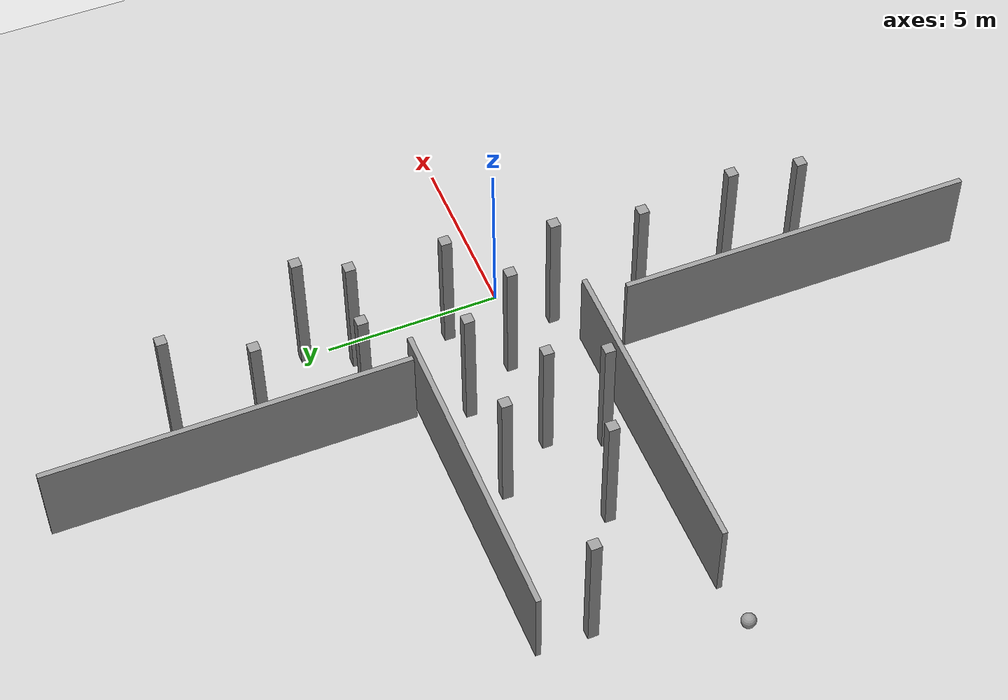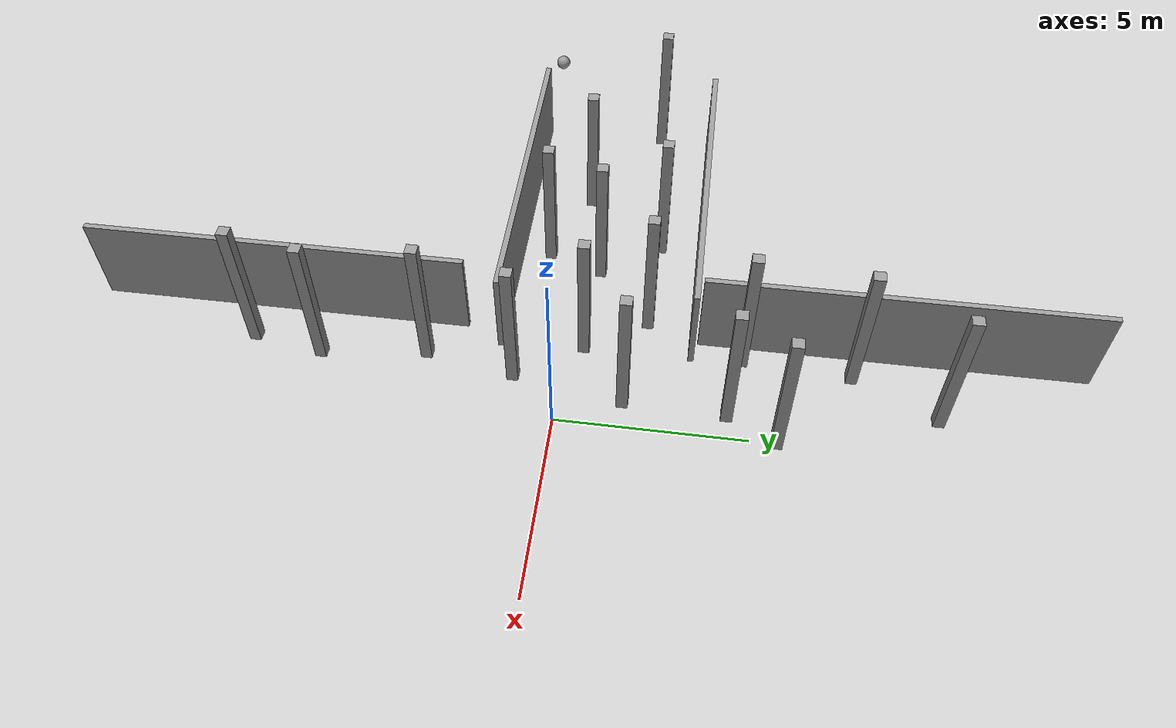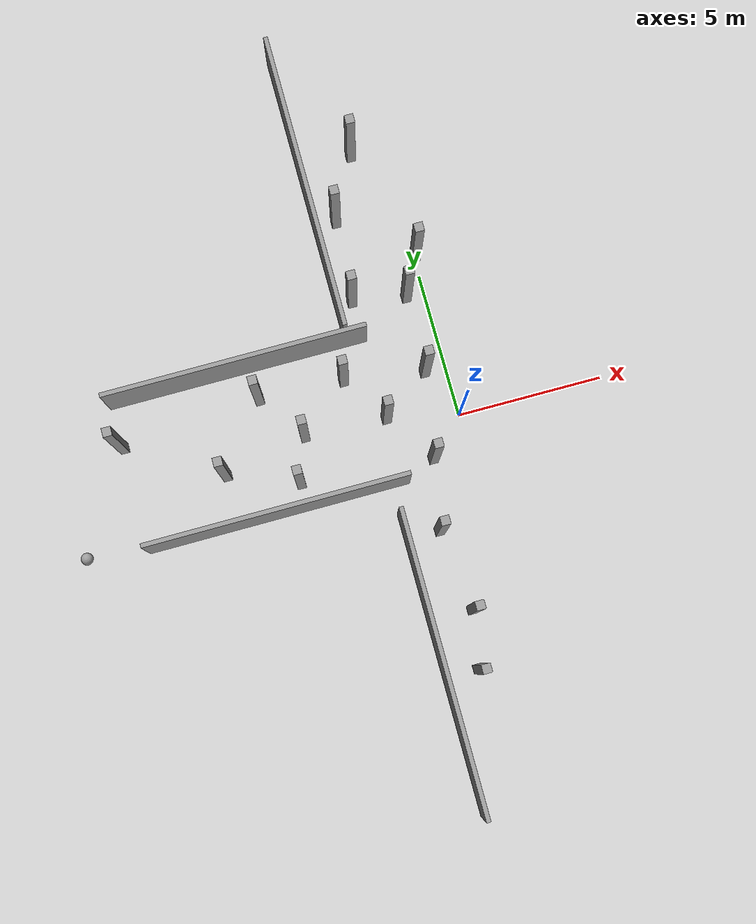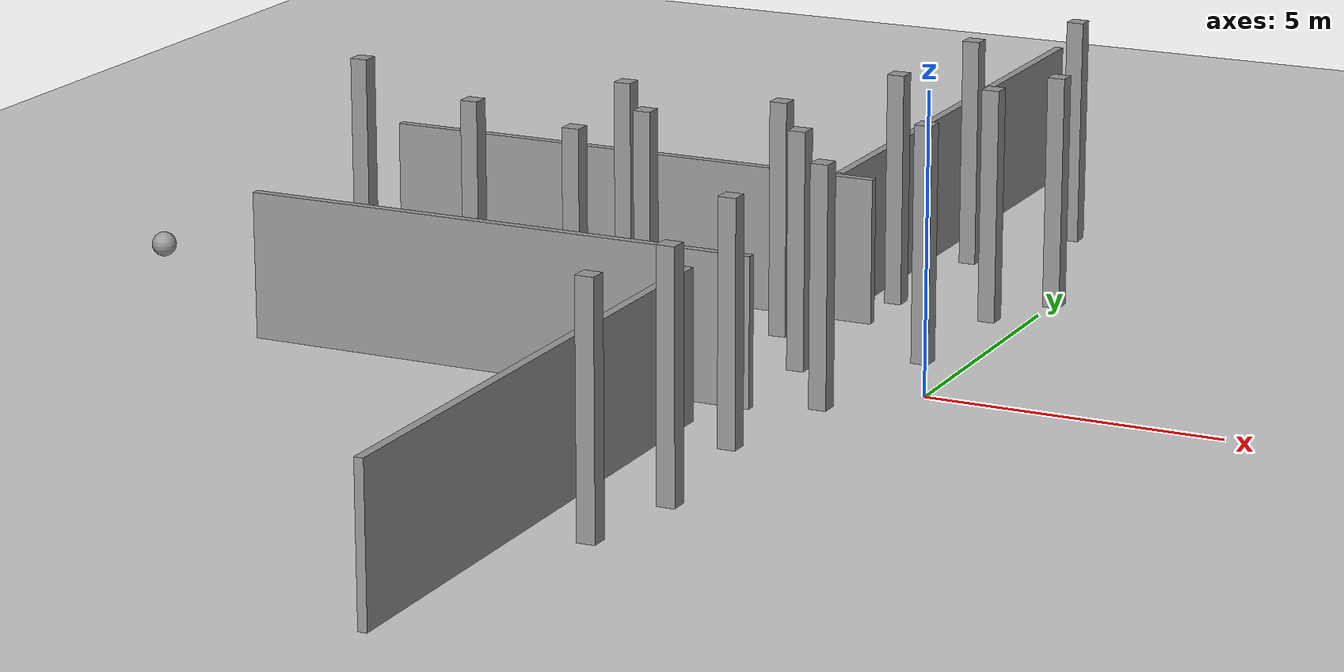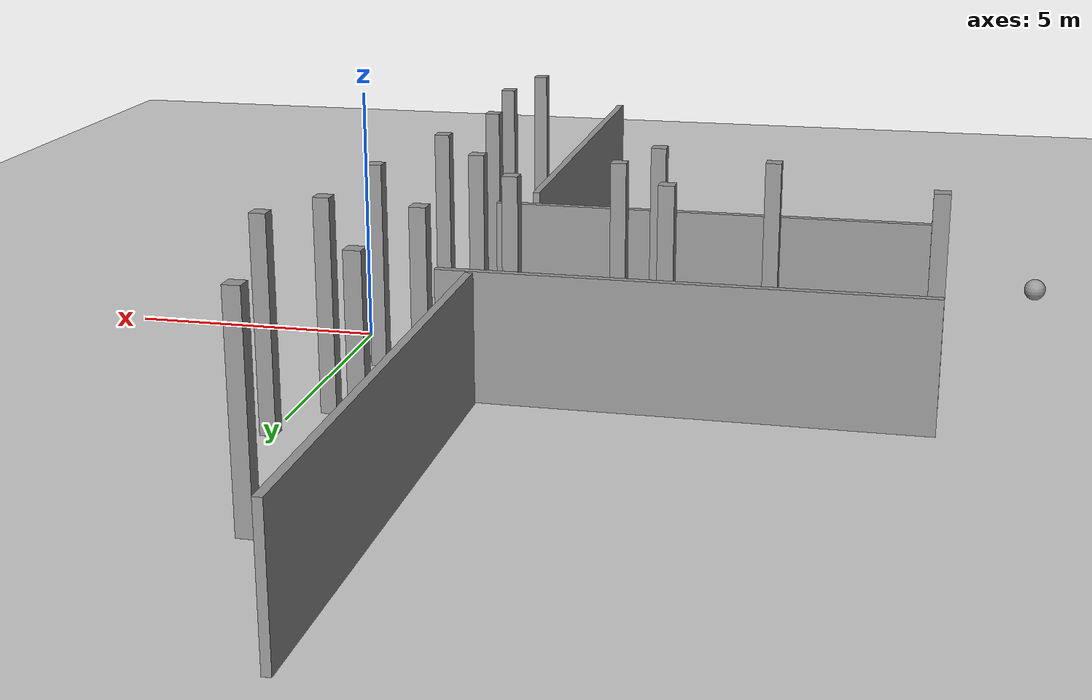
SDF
<sdf version="1.6">
 <world name="default">
  <model name="ground_plane">
   <static>1</static>
   <link name="link">
    <collision name="collision">
     <geometry><plane><normal>0 0 1</normal><size>100 100</size></plane></geometry>
     <surface><friction><ode><mu>100</mu><mu2>50</mu2></ode></friction></surface>
    </collision>
    <visual name="visual">
     <cast_shadows>0</cast_shadows>
     <geometry><plane><normal>0 0 1</normal><size>100 100</size></plane></geometry>
     <material>
      <script><uri>file://media/materials/scripts/gazebo.material</uri><name>Gazebo/Grey</name></script>
     </material>
    </visual>
   </link>
  </model>
  <model name="Untitled">
   <pose>-6.85388 3.37469 0 0 -0 0</pose>
   <link name="Wall_1">
    <collision name="Wall_1_Collision">
     <geometry><box><size>9 0.15 2.5</size></box></geometry>
     <pose>0 0 1.25 0 -0 0</pose>
    </collision>
    <visual name="Wall_1_Visual">
     <pose>0 0 1.25 0 -0 0</pose>
     <geometry><box><size>9 0.15 2.5</size></box></geometry>
     <material>
      <script><uri>file://media/materials/scripts/gazebo.material</uri><name>Gazebo/Grey</name></script>
      <ambient>1 1 1 1</ambient>
     </material>
     <meta><layer>0</layer></meta>
    </visual>
   </link>
   <static>1</static>
  </model>
  <model name="Untitled_clone">
   <pose>-6.74636 -1.72511 0 0 -0 0</pose>
   <link name="Wall_1">
    <collision name="Wall_1_Collision">
     <geometry><box><size>9 0.15 2.5</size></box></geometry>
     <pose>0 0 1.25 0 -0 0</pose>
    </collision>
    <visual name="Wall_1_Visual">
     <pose>0 0 1.25 0 -0 0</pose>
     <geometry><box><size>9 0.15 2.5</size></box></geometry>
     <material>
      <script><uri>file://media/materials/scripts/gazebo.material</uri><name>Gazebo/Grey</name></script>
      <ambient>1 1 1 1</ambient>
     </material>
     <meta><layer>0</layer></meta>
    </visual>
   </link>
   <static>1</static>
  </model>
  <model name="Untitled_0">
   <pose>-2.85637 -7.82972 0 0 -0 0</pose>
   <link name="Wall_3">
    <collision name="Wall_3_Collision">
     <geometry><box><size>10.25 0.15 2.5</size></box></geometry>
     <pose>0 0 1.25 0 -0 0</pose>
    </collision>
    <visual name="Wall_3_Visual">
     <pose>0 0 1.25 0 -0 0</pose>
     <geometry><box><size>10.25 0.15 2.5</size></box></geometry>
     <material>
      <script><uri>file://media/materials/scripts/gazebo.material</uri><name>Gazebo/Grey</name></script>
      <ambient>1 1 1 1</ambient>
     </material>
     <meta><layer>0</layer></meta>
    </visual>
    <pose>0 0 0 0 -0 -1.5708</pose>
   </link>
   <static>1</static>
  </model>
  <model name="Untitled_0_clone_0">
   <pose>-3.02847 8.65549 0 0 -0 0</pose>
   <link name="Wall_3">
    <collision name="Wall_3_Collision">
     <geometry><box><size>10.25 0.15 2.5</size></box></geometry>
     <pose>0 0 1.25 0 -0 0</pose>
    </collision>
    <visual name="Wall_3_Visual">
     <pose>0 0 1.25 0 -0 0</pose>
     <geometry><box><size>10.25 0.15 2.5</size></box></geometry>
     <material>
      <script><uri>file://media/materials/scripts/gazebo.material</uri><name>Gazebo/Grey</name></script>
      <ambient>1 1 1 1</ambient>
     </material>
     <meta><layer>0</layer></meta>
    </visual>
    <pose>0 0 0 0 -0 -1.5708</pose>
   </link>
   <static>1</static>
  </model>
  <model name="unit_box_clone_clone_24">
   <link name="link">
    <inertial>
     <mass>1000</mass>
     <inertia><ixx>1340.83</ixx><ixy>0</ixy><ixz>0</ixz><iyy>1340.83</iyy><iyz>0</iyz><izz>15</izz></inertia>
    </inertial>
    <visual name="visual">
     <geometry><box><size>0.3 0.3 4</size></box></geometry>
     <material>
      <script><name>Gazebo/Grey</name><uri>file://media/materials/scripts/gazebo.material</uri></script>
      <shader type="pixel"><normal_map>__default__</normal_map></shader>
      <ambient>0.3 0.3 0.3 1</ambient>
      <diffuse>0.7 0.7 0.7 1</diffuse>
      <specular>0.01 0.01 0.01 1</specular>
      <emissive>0 0 0 1</emissive>
     </material>
    </visual>
    <collision name="collision">
     <geometry><box><size>0.3 0.3 4</size></box></geometry>
     <surface>
      <friction>
       <ode><mu>1</mu><mu2>1</mu2><fdir1>0 0 0</fdir1><slip1>0</slip1><slip2>0</slip2></ode>
       <torsional>
        <coefficient>1</coefficient>
        <patch_radius>0</patch_radius>
        <surface_radius>0</surface_radius>
        <use_patch_radius>1</use_patch_radius>
        <ode><slip>0</slip></ode>
       </torsional>
      </friction>
      <bounce><restitution_coefficient>0</restitution_coefficient><threshold>1e+06</threshold></bounce>
      <contact>
       <collide_without_contact>0</collide_without_contact>
       <collide_without_contact_bitmask>1</collide_without_contact_bitmask>
       <collide_bitmask>1</collide_bitmask>
       <ode>
        <soft_cfm>0</soft_cfm>
        <soft_erp>0.2</soft_erp>
        <kp>1e+13</kp>
        <kd>1</kd>
        <max_vel>0.01</max_vel>
        <min_depth>0</min_depth>
       </ode>
       <bullet>
        <split_impulse>1</split_impulse>
        <split_impulse_penetration_threshold>-0.01</split_impulse_penetration_threshold>
        <soft_cfm>0</soft_cfm>
        <soft_erp>0.2</soft_erp>
        <kp>1e+13</kp>
        <kd>1</kd>
       </bullet>
      </contact>
     </surface>
    </collision>
   </link>
   <static>0</static>
   <pose>-11.2321 1.86882 2 7e-06 -1e-06 -0.002931</pose>
  </model>
  <model name="unit_box_clone_clone_24_clone">
   <link name="link">
    <inertial>
     <mass>1000</mass>
     <inertia><ixx>1340.83</ixx><ixy>0</ixy><ixz>0</ixz><iyy>1340.83</iyy><iyz>0</iyz><izz>15</izz></inertia>
    </inertial>
    <visual name="visual">
     <geometry><box><size>0.3 0.3 4</size></box></geometry>
     <material>
      <script><name>Gazebo/Grey</name><uri>file://media/materials/scripts/gazebo.material</uri></script>
      <shader type="pixel"><normal_map>__default__</normal_map></shader>
      <ambient>0.3 0.3 0.3 1</ambient>
      <diffuse>0.7 0.7 0.7 1</diffuse>
      <specular>0.01 0.01 0.01 1</specular>
      <emissive>0 0 0 1</emissive>
     </material>
    </visual>
    <collision name="collision">
     <geometry><box><size>0.3 0.3 4</size></box></geometry>
     <surface>
      <friction>
       <ode><mu>1</mu><mu2>1</mu2><fdir1>0 0 0</fdir1><slip1>0</slip1><slip2>0</slip2></ode>
       <torsional>
        <coefficient>1</coefficient>
        <patch_radius>0</patch_radius>
        <surface_radius>0</surface_radius>
        <use_patch_radius>1</use_patch_radius>
        <ode><slip>0</slip></ode>
       </torsional>
      </friction>
      <bounce><restitution_coefficient>0</restitution_coefficient><threshold>1e+06</threshold></bounce>
      <contact>
       <collide_without_contact>0</collide_without_contact>
       <collide_without_contact_bitmask>1</collide_without_contact_bitmask>
       <collide_bitmask>1</collide_bitmask>
       <ode>
        <soft_cfm>0</soft_cfm>
        <soft_erp>0.2</soft_erp>
        <kp>1e+13</kp>
        <kd>1</kd>
        <max_vel>0.01</max_vel>
        <min_depth>0</min_depth>
       </ode>
       <bullet>
        <split_impulse>1</split_impulse>
        <split_impulse_penetration_threshold>-0.01</split_impulse_penetration_threshold>
        <soft_cfm>0</soft_cfm>
        <soft_erp>0.2</soft_erp>
        <kp>1e+13</kp>
        <kd>1</kd>
       </bullet>
      </contact>
     </surface>
    </collision>
   </link>
   <static>0</static>
   <pose>-2.42599 0.511197 2 1.4e-05 -0 -0.002924</pose>
  </model>
  <model name="unit_box_clone_clone_24_clone_0">
   <link name="link">
    <inertial>
     <mass>1000</mass>
     <inertia><ixx>1340.83</ixx><ixy>0</ixy><ixz>0</ixz><iyy>1340.83</iyy><iyz>0</iyz><izz>15</izz></inertia>
    </inertial>
    <visual name="visual">
     <geometry><box><size>0.3 0.3 4</size></box></geometry>
     <material>
      <script><name>Gazebo/Grey</name><uri>file://media/materials/scripts/gazebo.material</uri></script>
      <shader type="pixel"><normal_map>__default__</normal_map></shader>
      <ambient>0.3 0.3 0.3 1</ambient>
      <diffuse>0.7 0.7 0.7 1</diffuse>
      <specular>0.01 0.01 0.01 1</specular>
      <emissive>0 0 0 1</emissive>
     </material>
    </visual>
    <collision name="collision">
     <geometry><box><size>0.3 0.3 4</size></box></geometry>
     <surface>
      <friction>
       <ode><mu>1</mu><mu2>1</mu2><fdir1>0 0 0</fdir1><slip1>0</slip1><slip2>0</slip2></ode>
       <torsional>
        <coefficient>1</coefficient>
        <patch_radius>0</patch_radius>
        <surface_radius>0</surface_radius>
        <use_patch_radius>1</use_patch_radius>
        <ode><slip>0</slip></ode>
       </torsional>
      </friction>
      <bounce><restitution_coefficient>0</restitution_coefficient><threshold>1e+06</threshold></bounce>
      <contact>
       <collide_without_contact>0</collide_without_contact>
       <collide_without_contact_bitmask>1</collide_without_contact_bitmask>
       <collide_bitmask>1</collide_bitmask>
       <ode>
        <soft_cfm>0</soft_cfm>
        <soft_erp>0.2</soft_erp>
        <kp>1e+13</kp>
        <kd>1</kd>
        <max_vel>0.01</max_vel>
        <min_depth>0</min_depth>
       </ode>
       <bullet>
        <split_impulse>1</split_impulse>
        <split_impulse_penetration_threshold>-0.01</split_impulse_penetration_threshold>
        <soft_cfm>0</soft_cfm>
        <soft_erp>0.2</soft_erp>
        <kp>1e+13</kp>
        <kd>1</kd>
       </bullet>
      </contact>
     </surface>
    </collision>
   </link>
   <static>0</static>
   <pose>-1.26208 -1.22117 2 6e-06 -0 -0.002932</pose>
  </model>
  <model name="unit_box_clone_clone_24_clone_2">
   <link name="link">
    <inertial>
     <mass>1000</mass>
     <inertia><ixx>1340.83</ixx><ixy>0</ixy><ixz>0</ixz><iyy>1340.83</iyy><iyz>0</iyz><izz>15</izz></inertia>
    </inertial>
    <visual name="visual">
     <geometry><box><size>0.3 0.3 4</size></box></geometry>
     <material>
      <script><name>Gazebo/Grey</name><uri>file://media/materials/scripts/gazebo.material</uri></script>
      <shader type="pixel"><normal_map>__default__</normal_map></shader>
      <ambient>0.3 0.3 0.3 1</ambient>
      <diffuse>0.7 0.7 0.7 1</diffuse>
      <specular>0.01 0.01 0.01 1</specular>
      <emissive>0 0 0 1</emissive>
     </material>
    </visual>
    <collision name="collision">
     <geometry><box><size>0.3 0.3 4</size></box></geometry>
     <surface>
      <friction>
       <ode><mu>1</mu><mu2>1</mu2><fdir1>0 0 0</fdir1><slip1>0</slip1><slip2>0</slip2></ode>
       <torsional>
        <coefficient>1</coefficient>
        <patch_radius>0</patch_radius>
        <surface_radius>0</surface_radius>
        <use_patch_radius>1</use_patch_radius>
        <ode><slip>0</slip></ode>
       </torsional>
      </friction>
      <bounce><restitution_coefficient>0</restitution_coefficient><threshold>1e+06</threshold></bounce>
      <contact>
       <collide_without_contact>0</collide_without_contact>
       <collide_without_contact_bitmask>1</collide_without_contact_bitmask>
       <collide_bitmask>1</collide_bitmask>
       <ode>
        <soft_cfm>0</soft_cfm>
        <soft_erp>0.2</soft_erp>
        <kp>1e+13</kp>
        <kd>1</kd>
        <max_vel>0.01</max_vel>
        <min_depth>0</min_depth>
       </ode>
       <bullet>
        <split_impulse>1</split_impulse>
        <split_impulse_penetration_threshold>-0.01</split_impulse_penetration_threshold>
        <soft_cfm>0</soft_cfm>
        <soft_erp>0.2</soft_erp>
        <kp>1e+13</kp>
        <kd>1</kd>
       </bullet>
      </contact>
     </surface>
    </collision>
   </link>
   <static>0</static>
   <pose>-0.653803 4.40188 2 -0 -0 -0.002928</pose>
  </model>
  <model name="unit_box_clone_clone_24_clone_4">
   <link name="link">
    <inertial>
     <mass>1000</mass>
     <inertia><ixx>1340.83</ixx><ixy>0</ixy><ixz>0</ixz><iyy>1340.83</iyy><iyz>0</iyz><izz>15</izz></inertia>
    </inertial>
    <visual name="visual">
     <geometry><box><size>0.3 0.3 4</size></box></geometry>
     <material>
      <script><name>Gazebo/Grey</name><uri>file://media/materials/scripts/gazebo.material</uri></script>
      <shader type="pixel"><normal_map>__default__</normal_map></shader>
      <ambient>0.3 0.3 0.3 1</ambient>
      <diffuse>0.7 0.7 0.7 1</diffuse>
      <specular>0.01 0.01 0.01 1</specular>
      <emissive>0 0 0 1</emissive>
     </material>
    </visual>
    <collision name="collision">
     <geometry><box><size>0.3 0.3 4</size></box></geometry>
     <surface>
      <friction>
       <ode><mu>1</mu><mu2>1</mu2><fdir1>0 0 0</fdir1><slip1>0</slip1><slip2>0</slip2></ode>
       <torsional>
        <coefficient>1</coefficient>
        <patch_radius>0</patch_radius>
        <surface_radius>0</surface_radius>
        <use_patch_radius>1</use_patch_radius>
        <ode><slip>0</slip></ode>
       </torsional>
      </friction>
      <bounce><restitution_coefficient>0</restitution_coefficient><threshold>1e+06</threshold></bounce>
      <contact>
       <collide_without_contact>0</collide_without_contact>
       <collide_without_contact_bitmask>1</collide_without_contact_bitmask>
       <collide_bitmask>1</collide_bitmask>
       <ode>
        <soft_cfm>0</soft_cfm>
        <soft_erp>0.2</soft_erp>
        <kp>1e+13</kp>
        <kd>1</kd>
        <max_vel>0.01</max_vel>
        <min_depth>0</min_depth>
       </ode>
       <bullet>
        <split_impulse>1</split_impulse>
        <split_impulse_penetration_threshold>-0.01</split_impulse_penetration_threshold>
        <soft_cfm>0</soft_cfm>
        <soft_erp>0.2</soft_erp>
        <kp>1e+13</kp>
        <kd>1</kd>
       </bullet>
      </contact>
     </surface>
    </collision>
   </link>
   <static>0</static>
   <pose>-2.28629 7.58681 2 -1.8e-05 -0 -0.002925</pose>
  </model>
  <model name="unit_box_clone_clone_24_clone_6">
   <link name="link">
    <inertial>
     <mass>1000</mass>
     <inertia><ixx>1340.83</ixx><ixy>0</ixy><ixz>0</ixz><iyy>1340.83</iyy><iyz>0</iyz><izz>15</izz></inertia>
    </inertial>
    <visual name="visual">
     <geometry><box><size>0.3 0.3 4</size></box></geometry>
     <material>
      <script><name>Gazebo/Grey</name><uri>file://media/materials/scripts/gazebo.material</uri></script>
      <shader type="pixel"><normal_map>__default__</normal_map></shader>
      <ambient>0.3 0.3 0.3 1</ambient>
      <diffuse>0.7 0.7 0.7 1</diffuse>
      <specular>0.01 0.01 0.01 1</specular>
      <emissive>0 0 0 1</emissive>
     </material>
    </visual>
    <collision name="collision">
     <geometry><box><size>0.3 0.3 4</size></box></geometry>
     <surface>
      <friction>
       <ode><mu>1</mu><mu2>1</mu2><fdir1>0 0 0</fdir1><slip1>0</slip1><slip2>0</slip2></ode>
       <torsional>
        <coefficient>1</coefficient>
        <patch_radius>0</patch_radius>
        <surface_radius>0</surface_radius>
        <use_patch_radius>1</use_patch_radius>
        <ode><slip>0</slip></ode>
       </torsional>
      </friction>
      <bounce><restitution_coefficient>0</restitution_coefficient><threshold>1e+06</threshold></bounce>
      <contact>
       <collide_without_contact>0</collide_without_contact>
       <collide_without_contact_bitmask>1</collide_without_contact_bitmask>
       <collide_bitmask>1</collide_bitmask>
       <ode>
        <soft_cfm>0</soft_cfm>
        <soft_erp>0.2</soft_erp>
        <kp>1e+13</kp>
        <kd>1</kd>
        <max_vel>0.01</max_vel>
        <min_depth>0</min_depth>
       </ode>
       <bullet>
        <split_impulse>1</split_impulse>
        <split_impulse_penetration_threshold>-0.01</split_impulse_penetration_threshold>
        <soft_cfm>0</soft_cfm>
        <soft_erp>0.2</soft_erp>
        <kp>1e+13</kp>
        <kd>1</kd>
       </bullet>
      </contact>
     </surface>
    </collision>
   </link>
   <static>0</static>
   <pose>-1.17803 9.7513 2 0 0 -0.002937</pose>
  </model>
  <model name="unit_box_clone_clone_24_clone_7">
   <link name="link">
    <inertial>
     <mass>1000</mass>
     <inertia><ixx>1340.83</ixx><ixy>0</ixy><ixz>0</ixz><iyy>1340.83</iyy><iyz>0</iyz><izz>15</izz></inertia>
    </inertial>
    <visual name="visual">
     <geometry><box><size>0.3 0.3 4</size></box></geometry>
     <material>
      <script><name>Gazebo/Grey</name><uri>file://media/materials/scripts/gazebo.material</uri></script>
      <shader type="pixel"><normal_map>__default__</normal_map></shader>
      <ambient>0.3 0.3 0.3 1</ambient>
      <diffuse>0.7 0.7 0.7 1</diffuse>
      <specular>0.01 0.01 0.01 1</specular>
      <emissive>0 0 0 1</emissive>
     </material>
    </visual>
    <collision name="collision">
     <geometry><box><size>0.3 0.3 4</size></box></geometry>
     <surface>
      <friction>
       <ode><mu>1</mu><mu2>1</mu2><fdir1>0 0 0</fdir1><slip1>0</slip1><slip2>0</slip2></ode>
       <torsional>
        <coefficient>1</coefficient>
        <patch_radius>0</patch_radius>
        <surface_radius>0</surface_radius>
        <use_patch_radius>1</use_patch_radius>
        <ode><slip>0</slip></ode>
       </torsional>
      </friction>
      <bounce><restitution_coefficient>0</restitution_coefficient><threshold>1e+06</threshold></bounce>
      <contact>
       <collide_without_contact>0</collide_without_contact>
       <collide_without_contact_bitmask>1</collide_without_contact_bitmask>
       <collide_bitmask>1</collide_bitmask>
       <ode>
        <soft_cfm>0</soft_cfm>
        <soft_erp>0.2</soft_erp>
        <kp>1e+13</kp>
        <kd>1</kd>
        <max_vel>0.01</max_vel>
        <min_depth>0</min_depth>
       </ode>
       <bullet>
        <split_impulse>1</split_impulse>
        <split_impulse_penetration_threshold>-0.01</split_impulse_penetration_threshold>
        <soft_cfm>0</soft_cfm>
        <soft_erp>0.2</soft_erp>
        <kp>1e+13</kp>
        <kd>1</kd>
       </bullet>
      </contact>
     </surface>
    </collision>
   </link>
   <static>0</static>
   <pose>-8.10757 0.03817 2.00001 0 4e-05 -0.002926</pose>
  </model>
  <model name="unit_box_clone_clone_24_clone_8">
   <link name="link">
    <inertial>
     <mass>1000</mass>
     <inertia><ixx>1340.83</ixx><ixy>0</ixy><ixz>0</ixz><iyy>1340.83</iyy><iyz>0</iyz><izz>15</izz></inertia>
    </inertial>
    <visual name="visual">
     <geometry><box><size>0.3 0.3 4</size></box></geometry>
     <material>
      <script><name>Gazebo/Grey</name><uri>file://media/materials/scripts/gazebo.material</uri></script>
      <shader type="pixel"><normal_map>__default__</normal_map></shader>
      <ambient>0.3 0.3 0.3 1</ambient>
      <diffuse>0.7 0.7 0.7 1</diffuse>
      <specular>0.01 0.01 0.01 1</specular>
      <emissive>0 0 0 1</emissive>
     </material>
    </visual>
    <collision name="collision">
     <geometry><box><size>0.3 0.3 4</size></box></geometry>
     <surface>
      <friction>
       <ode><mu>1</mu><mu2>1</mu2><fdir1>0 0 0</fdir1><slip1>0</slip1><slip2>0</slip2></ode>
       <torsional>
        <coefficient>1</coefficient>
        <patch_radius>0</patch_radius>
        <surface_radius>0</surface_radius>
        <use_patch_radius>1</use_patch_radius>
        <ode><slip>0</slip></ode>
       </torsional>
      </friction>
      <bounce><restitution_coefficient>0</restitution_coefficient><threshold>1e+06</threshold></bounce>
      <contact>
       <collide_without_contact>0</collide_without_contact>
       <collide_without_contact_bitmask>1</collide_without_contact_bitmask>
       <collide_bitmask>1</collide_bitmask>
       <ode>
        <soft_cfm>0</soft_cfm>
        <soft_erp>0.2</soft_erp>
        <kp>1e+13</kp>
        <kd>1</kd>
        <max_vel>0.01</max_vel>
        <min_depth>0</min_depth>
       </ode>
       <bullet>
        <split_impulse>1</split_impulse>
        <split_impulse_penetration_threshold>-0.01</split_impulse_penetration_threshold>
        <soft_cfm>0</soft_cfm>
        <soft_erp>0.2</soft_erp>
        <kp>1e+13</kp>
        <kd>1</kd>
       </bullet>
      </contact>
     </surface>
    </collision>
   </link>
   <static>0</static>
   <pose>-6.39947 2.26061 2 0 4e-06 -0.002923</pose>
  </model>
  <model name="unit_box_clone_clone_24_clone_9">
   <link name="link">
    <inertial>
     <mass>1000</mass>
     <inertia><ixx>1340.83</ixx><ixy>0</ixy><ixz>0</ixz><iyy>1340.83</iyy><iyz>0</iyz><izz>15</izz></inertia>
    </inertial>
    <visual name="visual">
     <geometry><box><size>0.3 0.3 4</size></box></geometry>
     <material>
      <script><name>Gazebo/Grey</name><uri>file://media/materials/scripts/gazebo.material</uri></script>
      <shader type="pixel"><normal_map>__default__</normal_map></shader>
      <ambient>0.3 0.3 0.3 1</ambient>
      <diffuse>0.7 0.7 0.7 1</diffuse>
      <specular>0.01 0.01 0.01 1</specular>
      <emissive>0 0 0 1</emissive>
     </material>
    </visual>
    <collision name="collision">
     <geometry><box><size>0.3 0.3 4</size></box></geometry>
     <surface>
      <friction>
       <ode><mu>1</mu><mu2>1</mu2><fdir1>0 0 0</fdir1><slip1>0</slip1><slip2>0</slip2></ode>
       <torsional>
        <coefficient>1</coefficient>
        <patch_radius>0</patch_radius>
        <surface_radius>0</surface_radius>
        <use_patch_radius>1</use_patch_radius>
        <ode><slip>0</slip></ode>
       </torsional>
      </friction>
      <bounce><restitution_coefficient>0</restitution_coefficient><threshold>1e+06</threshold></bounce>
      <contact>
       <collide_without_contact>0</collide_without_contact>
       <collide_without_contact_bitmask>1</collide_without_contact_bitmask>
       <collide_bitmask>1</collide_bitmask>
       <ode>
        <soft_cfm>0</soft_cfm>
        <soft_erp>0.2</soft_erp>
        <kp>1e+13</kp>
        <kd>1</kd>
        <max_vel>0.01</max_vel>
        <min_depth>0</min_depth>
       </ode>
       <bullet>
        <split_impulse>1</split_impulse>
        <split_impulse_penetration_threshold>-0.01</split_impulse_penetration_threshold>
        <soft_cfm>0</soft_cfm>
        <soft_erp>0.2</soft_erp>
        <kp>1e+13</kp>
        <kd>1</kd>
       </bullet>
      </contact>
     </surface>
    </collision>
   </link>
   <static>0</static>
   <pose>-5.77278 -0.868819 2 2e-06 -0 -0.002932</pose>
  </model>
  <model name="unit_box_clone_clone_24_clone_11">
   <link name="link">
    <inertial>
     <mass>1000</mass>
     <inertia><ixx>1340.83</ixx><ixy>0</ixy><ixz>0</ixz><iyy>1340.83</iyy><iyz>0</iyz><izz>15</izz></inertia>
    </inertial>
    <visual name="visual">
     <geometry><box><size>0.3 0.3 4</size></box></geometry>
     <material>
      <script><name>Gazebo/Grey</name><uri>file://media/materials/scripts/gazebo.material</uri></script>
      <shader type="pixel"><normal_map>__default__</normal_map></shader>
      <ambient>0.3 0.3 0.3 1</ambient>
      <diffuse>0.7 0.7 0.7 1</diffuse>
      <specular>0.01 0.01 0.01 1</specular>
      <emissive>0 0 0 1</emissive>
     </material>
    </visual>
    <collision name="collision">
     <geometry><box><size>0.3 0.3 4</size></box></geometry>
     <surface>
      <friction>
       <ode><mu>1</mu><mu2>1</mu2><fdir1>0 0 0</fdir1><slip1>0</slip1><slip2>0</slip2></ode>
       <torsional>
        <coefficient>1</coefficient>
        <patch_radius>0</patch_radius>
        <surface_radius>0</surface_radius>
        <use_patch_radius>1</use_patch_radius>
        <ode><slip>0</slip></ode>
       </torsional>
      </friction>
      <bounce><restitution_coefficient>0</restitution_coefficient><threshold>1e+06</threshold></bounce>
      <contact>
       <collide_without_contact>0</collide_without_contact>
       <collide_without_contact_bitmask>1</collide_without_contact_bitmask>
       <collide_bitmask>1</collide_bitmask>
       <ode>
        <soft_cfm>0</soft_cfm>
        <soft_erp>0.2</soft_erp>
        <kp>1e+13</kp>
        <kd>1</kd>
        <max_vel>0.01</max_vel>
        <min_depth>0</min_depth>
       </ode>
       <bullet>
        <split_impulse>1</split_impulse>
        <split_impulse_penetration_threshold>-0.01</split_impulse_penetration_threshold>
        <soft_cfm>0</soft_cfm>
        <soft_erp>0.2</soft_erp>
        <kp>1e+13</kp>
        <kd>1</kd>
       </bullet>
      </contact>
     </surface>
    </collision>
   </link>
   <static>0</static>
   <pose>-1.71696 -3.61973 2 0 -1.1e-05 -0.002923</pose>
  </model>
  <model name="unit_box_clone_clone_24_clone_15">
   <link name="link">
    <inertial>
     <mass>1000</mass>
     <inertia><ixx>1340.83</ixx><ixy>0</ixy><ixz>0</ixz><iyy>1340.83</iyy><iyz>0</iyz><izz>15</izz></inertia>
    </inertial>
    <visual name="visual">
     <geometry><box><size>0.3 0.3 4</size></box></geometry>
     <material>
      <script><name>Gazebo/Grey</name><uri>file://media/materials/scripts/gazebo.material</uri></script>
      <shader type="pixel"><normal_map>__default__</normal_map></shader>
      <ambient>0.3 0.3 0.3 1</ambient>
      <diffuse>0.7 0.7 0.7 1</diffuse>
      <specular>0.01 0.01 0.01 1</specular>
      <emissive>0 0 0 1</emissive>
     </material>
    </visual>
    <collision name="collision">
     <geometry><box><size>0.3 0.3 4</size></box></geometry>
     <surface>
      <friction>
       <ode><mu>1</mu><mu2>1</mu2><fdir1>0 0 0</fdir1><slip1>0</slip1><slip2>0</slip2></ode>
       <torsional>
        <coefficient>1</coefficient>
        <patch_radius>0</patch_radius>
        <surface_radius>0</surface_radius>
        <use_patch_radius>1</use_patch_radius>
        <ode><slip>0</slip></ode>
       </torsional>
      </friction>
      <bounce><restitution_coefficient>0</restitution_coefficient><threshold>1e+06</threshold></bounce>
      <contact>
       <collide_without_contact>0</collide_without_contact>
       <collide_without_contact_bitmask>1</collide_without_contact_bitmask>
       <collide_bitmask>1</collide_bitmask>
       <ode>
        <soft_cfm>0</soft_cfm>
        <soft_erp>0.2</soft_erp>
        <kp>1e+13</kp>
        <kd>1</kd>
        <max_vel>0.01</max_vel>
        <min_depth>0</min_depth>
       </ode>
       <bullet>
        <split_impulse>1</split_impulse>
        <split_impulse_penetration_threshold>-0.01</split_impulse_penetration_threshold>
        <soft_cfm>0</soft_cfm>
        <soft_erp>0.2</soft_erp>
        <kp>1e+13</kp>
        <kd>1</kd>
       </bullet>
      </contact>
     </surface>
    </collision>
   </link>
   <static>0</static>
   <pose>-1.72552 -8.34607 2 -1e-06 -2e-06 -0.002927</pose>
  </model>
  <model name="unit_sphere">
   <link name="link">
    <inertial>
     <mass>1</mass>
     <inertia><ixx>0.1</ixx><ixy>0</ixy><ixz>0</ixz><iyy>0.1</iyy><iyz>0</iyz><izz>0.1</izz></inertia>
    </inertial>
    <gravity>0</gravity>
    <visual name="visual">
     <geometry><sphere><radius>0.203941</radius></sphere></geometry>
     <material>
      <script><name>Gazebo/Grey</name><uri>file://media/materials/scripts/gazebo.material</uri></script>
      <shader type="pixel"><normal_map>__default__</normal_map></shader>
     </material>
    </visual>
    <collision name="collision">
     <geometry><sphere><radius>0.203941</radius></sphere></geometry>
     <surface>
      <friction>
       <ode><mu>1</mu><mu2>1</mu2><fdir1>0 0 0</fdir1><slip1>0</slip1><slip2>0</slip2></ode>
       <torsional>
        <coefficient>1</coefficient>
        <patch_radius>0</patch_radius>
        <surface_radius>0</surface_radius>
        <use_patch_radius>1</use_patch_radius>
        <ode><slip>0</slip></ode>
       </torsional>
      </friction>
      <bounce><restitution_coefficient>0</restitution_coefficient><threshold>1e+06</threshold></bounce>
      <contact>
       <collide_without_contact>0</collide_without_contact>
       <collide_without_contact_bitmask>1</collide_without_contact_bitmask>
       <collide_bitmask>1</collide_bitmask>
       <ode>
        <soft_cfm>0</soft_cfm>
        <soft_erp>0.2</soft_erp>
        <kp>1e+13</kp>
        <kd>1</kd>
        <max_vel>0.01</max_vel>
        <min_depth>0</min_depth>
       </ode>
       <bullet>
        <split_impulse>1</split_impulse>
        <split_impulse_penetration_threshold>-0.01</split_impulse_penetration_threshold>
        <soft_cfm>0</soft_cfm>
        <soft_erp>0.2</soft_erp>
        <kp>1e+13</kp>
        <kd>1</kd>
       </bullet>
      </contact>
     </surface>
    </collision>
   </link>
   <static>0</static>
   <pose>-13.1559 -1.55765 1.32632 0 -0 0</pose>
  </model>
  <model name="unit_box_clone_clone_24_clone_clone">
   <link name="link">
    <inertial>
     <mass>1000</mass>
     <inertia><ixx>1340.83</ixx><ixy>0</ixy><ixz>0</ixz><iyy>1340.83</iyy><iyz>0</iyz><izz>15</izz></inertia>
    </inertial>
    <visual name="visual">
     <geometry><box><size>0.3 0.3 4</size></box></geometry>
     <material>
      <script><name>Gazebo/Grey</name><uri>file://media/materials/scripts/gazebo.material</uri></script>
      <shader type="pixel"><normal_map>__default__</normal_map></shader>
      <ambient>0.3 0.3 0.3 1</ambient>
      <diffuse>0.7 0.7 0.7 1</diffuse>
      <specular>0.01 0.01 0.01 1</specular>
      <emissive>0 0 0 1</emissive>
     </material>
    </visual>
    <collision name="collision">
     <geometry><box><size>0.3 0.3 4</size></box></geometry>
     <surface>
      <friction>
       <ode><mu>1</mu><mu2>1</mu2><fdir1>0 0 0</fdir1><slip1>0</slip1><slip2>0</slip2></ode>
       <torsional>
        <coefficient>1</coefficient>
        <patch_radius>0</patch_radius>
        <surface_radius>0</surface_radius>
        <use_patch_radius>1</use_patch_radius>
        <ode><slip>0</slip></ode>
       </torsional>
      </friction>
      <bounce><restitution_coefficient>0</restitution_coefficient><threshold>1e+06</threshold></bounce>
      <contact>
       <collide_without_contact>0</collide_without_contact>
       <collide_without_contact_bitmask>1</collide_without_contact_bitmask>
       <collide_bitmask>1</collide_bitmask>
       <ode>
        <soft_cfm>0</soft_cfm>
        <soft_erp>0.2</soft_erp>
        <kp>1e+13</kp>
        <kd>1</kd>
        <max_vel>0.01</max_vel>
        <min_depth>0</min_depth>
       </ode>
       <bullet>
        <split_impulse>1</split_impulse>
        <split_impulse_penetration_threshold>-0.01</split_impulse_penetration_threshold>
        <soft_cfm>0</soft_cfm>
        <soft_erp>0.2</soft_erp>
        <kp>1e+13</kp>
        <kd>1</kd>
       </bullet>
      </contact>
     </surface>
    </collision>
   </link>
   <static>0</static>
   <pose>-0.748132 1.71782 2 -1e-06 -1e-06 -0.002923</pose>
  </model>
  <model name="unit_box_clone_clone_24_clone_clone_0">
   <link name="link">
    <inertial>
     <mass>1000</mass>
     <inertia><ixx>1340.83</ixx><ixy>0</ixy><ixz>0</ixz><iyy>1340.83</iyy><iyz>0</iyz><izz>15</izz></inertia>
    </inertial>
    <visual name="visual">
     <geometry><box><size>0.3 0.3 4</size></box></geometry>
     <material>
      <script><name>Gazebo/Grey</name><uri>file://media/materials/scripts/gazebo.material</uri></script>
      <shader type="pixel"><normal_map>__default__</normal_map></shader>
      <ambient>0.3 0.3 0.3 1</ambient>
      <diffuse>0.7 0.7 0.7 1</diffuse>
      <specular>0.01 0.01 0.01 1</specular>
      <emissive>0 0 0 1</emissive>
     </material>
    </visual>
    <collision name="collision">
     <geometry><box><size>0.3 0.3 4</size></box></geometry>
     <surface>
      <friction>
       <ode><mu>1</mu><mu2>1</mu2><fdir1>0 0 0</fdir1><slip1>0</slip1><slip2>0</slip2></ode>
       <torsional>
        <coefficient>1</coefficient>
        <patch_radius>0</patch_radius>
        <surface_radius>0</surface_radius>
        <use_patch_radius>1</use_patch_radius>
        <ode><slip>0</slip></ode>
       </torsional>
      </friction>
      <bounce><restitution_coefficient>0</restitution_coefficient><threshold>1e+06</threshold></bounce>
      <contact>
       <collide_without_contact>0</collide_without_contact>
       <collide_without_contact_bitmask>1</collide_without_contact_bitmask>
       <collide_bitmask>1</collide_bitmask>
       <ode>
        <soft_cfm>0</soft_cfm>
        <soft_erp>0.2</soft_erp>
        <kp>1e+13</kp>
        <kd>1</kd>
        <max_vel>0.01</max_vel>
        <min_depth>0</min_depth>
       </ode>
       <bullet>
        <split_impulse>1</split_impulse>
        <split_impulse_penetration_threshold>-0.01</split_impulse_penetration_threshold>
        <soft_cfm>0</soft_cfm>
        <soft_erp>0.2</soft_erp>
        <kp>1e+13</kp>
        <kd>1</kd>
       </bullet>
      </contact>
     </surface>
    </collision>
   </link>
   <static>0</static>
   <pose>-1.38322 -6.42985 2 -5e-06 -1e-06 -0.002933</pose>
  </model>
  <model name="unit_box_clone_clone_24_clone_clone_1">
   <link name="link">
    <inertial>
     <mass>1000</mass>
     <inertia><ixx>1340.83</ixx><ixy>0</ixy><ixz>0</ixz><iyy>1340.83</iyy><iyz>0</iyz><izz>15</izz></inertia>
    </inertial>
    <visual name="visual">
     <geometry><box><size>0.3 0.3 4</size></box></geometry>
     <material>
      <script><name>Gazebo/Grey</name><uri>file://media/materials/scripts/gazebo.material</uri></script>
      <shader type="pixel"><normal_map>__default__</normal_map></shader>
      <ambient>0.3 0.3 0.3 1</ambient>
      <diffuse>0.7 0.7 0.7 1</diffuse>
      <specular>0.01 0.01 0.01 1</specular>
      <emissive>0 0 0 1</emissive>
     </material>
    </visual>
    <collision name="collision">
     <geometry><box><size>0.3 0.3 4</size></box></geometry>
     <surface>
      <friction>
       <ode><mu>1</mu><mu2>1</mu2><fdir1>0 0 0</fdir1><slip1>0</slip1><slip2>0</slip2></ode>
       <torsional>
        <coefficient>1</coefficient>
        <patch_radius>0</patch_radius>
        <surface_radius>0</surface_radius>
        <use_patch_radius>1</use_patch_radius>
        <ode><slip>0</slip></ode>
       </torsional>
      </friction>
      <bounce><restitution_coefficient>0</restitution_coefficient><threshold>1e+06</threshold></bounce>
      <contact>
       <collide_without_contact>0</collide_without_contact>
       <collide_without_contact_bitmask>1</collide_without_contact_bitmask>
       <collide_bitmask>1</collide_bitmask>
       <ode>
        <soft_cfm>0</soft_cfm>
        <soft_erp>0.2</soft_erp>
        <kp>1e+13</kp>
        <kd>1</kd>
        <max_vel>0.01</max_vel>
        <min_depth>0</min_depth>
       </ode>
       <bullet>
        <split_impulse>1</split_impulse>
        <split_impulse_penetration_threshold>-0.01</split_impulse_penetration_threshold>
        <soft_cfm>0</soft_cfm>
        <soft_erp>0.2</soft_erp>
        <kp>1e+13</kp>
        <kd>1</kd>
       </bullet>
      </contact>
     </surface>
    </collision>
   </link>
   <static>0</static>
   <pose>-3.48545 2.13961 2 0 -2.8e-05 -0.002918</pose>
  </model>
  <model name="unit_box_clone_clone_24_clone_clone_2">
   <link name="link">
    <inertial>
     <mass>1000</mass>
     <inertia><ixx>1340.83</ixx><ixy>0</ixy><ixz>0</ixz><iyy>1340.83</iyy><iyz>0</iyz><izz>15</izz></inertia>
    </inertial>
    <visual name="visual">
     <geometry><box><size>0.3 0.3 4</size></box></geometry>
     <material>
      <script><name>Gazebo/Grey</name><uri>file://media/materials/scripts/gazebo.material</uri></script>
      <shader type="pixel"><normal_map>__default__</normal_map></shader>
      <ambient>0.3 0.3 0.3 1</ambient>
      <diffuse>0.7 0.7 0.7 1</diffuse>
      <specular>0.01 0.01 0.01 1</specular>
      <emissive>0 0 0 1</emissive>
     </material>
    </visual>
    <collision name="collision">
     <geometry><box><size>0.3 0.3 4</size></box></geometry>
     <surface>
      <friction>
       <ode><mu>1</mu><mu2>1</mu2><fdir1>0 0 0</fdir1><slip1>0</slip1><slip2>0</slip2></ode>
       <torsional>
        <coefficient>1</coefficient>
        <patch_radius>0</patch_radius>
        <surface_radius>0</surface_radius>
        <use_patch_radius>1</use_patch_radius>
        <ode><slip>0</slip></ode>
       </torsional>
      </friction>
      <bounce><restitution_coefficient>0</restitution_coefficient><threshold>1e+06</threshold></bounce>
      <contact>
       <collide_without_contact>0</collide_without_contact>
       <collide_without_contact_bitmask>1</collide_without_contact_bitmask>
       <collide_bitmask>1</collide_bitmask>
       <ode>
        <soft_cfm>0</soft_cfm>
        <soft_erp>0.2</soft_erp>
        <kp>1e+13</kp>
        <kd>1</kd>
        <max_vel>0.01</max_vel>
        <min_depth>0</min_depth>
       </ode>
       <bullet>
        <split_impulse>1</split_impulse>
        <split_impulse_penetration_threshold>-0.01</split_impulse_penetration_threshold>
        <soft_cfm>0</soft_cfm>
        <soft_erp>0.2</soft_erp>
        <kp>1e+13</kp>
        <kd>1</kd>
       </bullet>
      </contact>
     </surface>
    </collision>
   </link>
   <static>0</static>
   <pose>-5.23916 0.633833 2 0 -1e-06 -0.002927</pose>
  </model>
  <model name="unit_box_clone_clone_24_clone_clone_3">
   <link name="link">
    <inertial>
     <mass>1000</mass>
     <inertia><ixx>1340.83</ixx><ixy>0</ixy><ixz>0</ixz><iyy>1340.83</iyy><iyz>0</iyz><izz>15</izz></inertia>
    </inertial>
    <visual name="visual">
     <geometry><box><size>0.3 0.3 4</size></box></geometry>
     <material>
      <script><name>Gazebo/Grey</name><uri>file://media/materials/scripts/gazebo.material</uri></script>
      <shader type="pixel"><normal_map>__default__</normal_map></shader>
      <ambient>0.3 0.3 0.3 1</ambient>
      <diffuse>0.7 0.7 0.7 1</diffuse>
      <specular>0.01 0.01 0.01 1</specular>
      <emissive>0 0 0 1</emissive>
     </material>
    </visual>
    <collision name="collision">
     <geometry><box><size>0.3 0.3 4</size></box></geometry>
     <surface>
      <friction>
       <ode><mu>1</mu><mu2>1</mu2><fdir1>0 0 0</fdir1><slip1>0</slip1><slip2>0</slip2></ode>
       <torsional>
        <coefficient>1</coefficient>
        <patch_radius>0</patch_radius>
        <surface_radius>0</surface_radius>
        <use_patch_radius>1</use_patch_radius>
        <ode><slip>0</slip></ode>
       </torsional>
      </friction>
      <bounce><restitution_coefficient>0</restitution_coefficient><threshold>1e+06</threshold></bounce>
      <contact>
       <collide_without_contact>0</collide_without_contact>
       <collide_without_contact_bitmask>1</collide_without_contact_bitmask>
       <collide_bitmask>1</collide_bitmask>
       <ode>
        <soft_cfm>0</soft_cfm>
        <soft_erp>0.2</soft_erp>
        <kp>1e+13</kp>
        <kd>1</kd>
        <max_vel>0.01</max_vel>
        <min_depth>0</min_depth>
       </ode>
       <bullet>
        <split_impulse>1</split_impulse>
        <split_impulse_penetration_threshold>-0.01</split_impulse_penetration_threshold>
        <soft_cfm>0</soft_cfm>
        <soft_erp>0.2</soft_erp>
        <kp>1e+13</kp>
        <kd>1</kd>
       </bullet>
      </contact>
     </surface>
    </collision>
   </link>
   <static>0</static>
   <pose>0.020395 5.67664 2 2e-06 7e-06 -0.002925</pose>
  </model>
  <model name="unit_box_clone_clone_24_clone_clone_4">
   <link name="link">
    <inertial>
     <mass>1000</mass>
     <inertia><ixx>1340.83</ixx><ixy>0</ixy><ixz>0</ixz><iyy>1340.83</iyy><iyz>0</iyz><izz>15</izz></inertia>
    </inertial>
    <visual name="visual">
     <geometry><box><size>0.3 0.3 4</size></box></geometry>
     <material>
      <script><name>Gazebo/Grey</name><uri>file://media/materials/scripts/gazebo.material</uri></script>
      <shader type="pixel"><normal_map>__default__</normal_map></shader>
      <ambient>0.3 0.3 0.3 1</ambient>
      <diffuse>0.7 0.7 0.7 1</diffuse>
      <specular>0.01 0.01 0.01 1</specular>
      <emissive>0 0 0 1</emissive>
     </material>
    </visual>
    <collision name="collision">
     <geometry><box><size>0.3 0.3 4</size></box></geometry>
     <surface>
      <friction>
       <ode><mu>1</mu><mu2>1</mu2><fdir1>0 0 0</fdir1><slip1>0</slip1><slip2>0</slip2></ode>
       <torsional>
        <coefficient>1</coefficient>
        <patch_radius>0</patch_radius>
        <surface_radius>0</surface_radius>
        <use_patch_radius>1</use_patch_radius>
        <ode><slip>0</slip></ode>
       </torsional>
      </friction>
      <bounce><restitution_coefficient>0</restitution_coefficient><threshold>1e+06</threshold></bounce>
      <contact>
       <collide_without_contact>0</collide_without_contact>
       <collide_without_contact_bitmask>1</collide_without_contact_bitmask>
       <collide_bitmask>1</collide_bitmask>
       <ode>
        <soft_cfm>0</soft_cfm>
        <soft_erp>0.2</soft_erp>
        <kp>1e+13</kp>
        <kd>1</kd>
        <max_vel>0.01</max_vel>
        <min_depth>0</min_depth>
       </ode>
       <bullet>
        <split_impulse>1</split_impulse>
        <split_impulse_penetration_threshold>-0.01</split_impulse_penetration_threshold>
        <soft_cfm>0</soft_cfm>
        <soft_erp>0.2</soft_erp>
        <kp>1e+13</kp>
        <kd>1</kd>
       </bullet>
      </contact>
     </surface>
    </collision>
   </link>
   <static>0</static>
   <pose>-2.49254 4.72486 2 9e-06 -0 -0.002927</pose>
  </model>
 </world>
</sdf>
